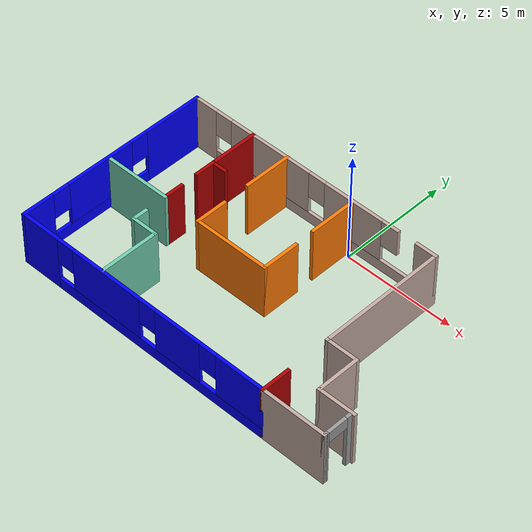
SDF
<?xml version='1.0'?>
<sdf version='1.6'>
  <model name='Building'>
    <pose frame=''>-0.778312 -4.05335 0 0 -0 0</pose>
    <link name='Wall_0'>
      <pose frame=''>-1.475 4.41632 0 0 -0 0</pose>
      <visual name='Wall_0_Visual_0'>
        <pose frame=''>-5.53947 0 1.25 0 -0 0</pose>
        <geometry>
          <box>
            <size>1.17105 0.15 2.5</size>
          </box>
        </geometry>
        <material>
          <script>
            <uri>file://media/materials/scripts/gazebo.material</uri>
            <name>Gazebo/Grey</name>
          </script>
          <ambient>0.760784 0.662745 0.627451 1</ambient>
        </material>
        <meta>
          <layer>0</layer>
        </meta>
      </visual>
      <collision name='Wall_0_Collision_0'>
        <geometry>
          <box>
            <size>1.17105 0.15 2.5</size>
          </box>
        </geometry>
        <pose frame=''>-5.53947 0 1.25 0 -0 0</pose>
      </collision>
      <visual name='Wall_0_Visual_1'>
        <pose frame=''>0.585527 0 0.25 0 -0 0</pose>
        <geometry>
          <box>
            <size>11.0789 0.15 0.5</size>
          </box>
        </geometry>
        <material>
          <script>
            <uri>file://media/materials/scripts/gazebo.material</uri>
            <name>Gazebo/Grey</name>
          </script>
          <ambient>0.760784 0.662745 0.627451 1</ambient>
        </material>
        <meta>
          <layer>0</layer>
        </meta>
      </visual>
      <collision name='Wall_0_Collision_1'>
        <geometry>
          <box>
            <size>11.0789 0.15 0.5</size>
          </box>
        </geometry>
        <pose frame=''>0.585527 0 0.25 0 -0 0</pose>
      </collision>
      <visual name='Wall_0_Visual_2'>
        <pose frame=''>-2.13333 0 1.5 0 -0 0</pose>
        <geometry>
          <box>
            <size>4.04124 0.15 2</size>
          </box>
        </geometry>
        <material>
          <script>
            <uri>file://media/materials/scripts/gazebo.material</uri>
            <name>Gazebo/Grey</name>
          </script>
          <ambient>0.760784 0.662745 0.627451 1</ambient>
        </material>
        <meta>
          <layer>0</layer>
        </meta>
      </visual>
      <collision name='Wall_0_Collision_2'>
        <geometry>
          <box>
            <size>4.04124 0.15 2</size>
          </box>
        </geometry>
        <pose frame=''>-2.13333 0 1.5 0 -0 0</pose>
      </collision>
      <visual name='Wall_0_Visual_3'>
        <pose frame=''>2.09715 0 1.5 0 -0 0</pose>
        <geometry>
          <box>
            <size>2.81973 0.15 2</size>
          </box>
        </geometry>
        <material>
          <script>
            <uri>file://media/materials/scripts/gazebo.material</uri>
            <name>Gazebo/Grey</name>
          </script>
          <ambient>0.760784 0.662745 0.627451 1</ambient>
        </material>
        <meta>
          <layer>0</layer>
        </meta>
      </visual>
      <collision name='Wall_0_Collision_3'>
        <geometry>
          <box>
            <size>2.81973 0.15 2</size>
          </box>
        </geometry>
        <pose frame=''>2.09715 0 1.5 0 -0 0</pose>
      </collision>
      <visual name='Wall_0_Visual_4'>
        <pose frame=''>5.61501 0 1.5 0 -0 0</pose>
        <geometry>
          <box>
            <size>1.01998 0.15 2</size>
          </box>
        </geometry>
        <material>
          <script>
            <uri>file://media/materials/scripts/gazebo.material</uri>
            <name>Gazebo/Grey</name>
          </script>
          <ambient>0.760784 0.662745 0.627451 1</ambient>
        </material>
        <meta>
          <layer>0</layer>
        </meta>
      </visual>
      <collision name='Wall_0_Collision_4'>
        <geometry>
          <box>
            <size>1.01998 0.15 2</size>
          </box>
        </geometry>
        <pose frame=''>5.61501 0 1.5 0 -0 0</pose>
      </collision>
      <visual name='Wall_0_Visual_5'>
        <pose frame=''>-4.55394 0 1.9 0 -0 0</pose>
        <geometry>
          <box>
            <size>0.8 0.15 1.2</size>
          </box>
        </geometry>
        <material>
          <script>
            <uri>file://media/materials/scripts/gazebo.material</uri>
            <name>Gazebo/Grey</name>
          </script>
          <ambient>0.760784 0.662745 0.627451 1</ambient>
        </material>
        <meta>
          <layer>0</layer>
        </meta>
      </visual>
      <collision name='Wall_0_Collision_5'>
        <geometry>
          <box>
            <size>0.8 0.15 1.2</size>
          </box>
        </geometry>
        <pose frame=''>-4.55394 0 1.9 0 -0 0</pose>
      </collision>
      <visual name='Wall_0_Visual_6'>
        <pose frame=''>0.287291 0 1.9 0 -0 0</pose>
        <geometry>
          <box>
            <size>0.8 0.15 1.2</size>
          </box>
        </geometry>
        <material>
          <script>
            <uri>file://media/materials/scripts/gazebo.material</uri>
            <name>Gazebo/Grey</name>
          </script>
          <ambient>0.760784 0.662745 0.627451 1</ambient>
        </material>
        <meta>
          <layer>0</layer>
        </meta>
      </visual>
      <collision name='Wall_0_Collision_6'>
        <geometry>
          <box>
            <size>0.8 0.15 1.2</size>
          </box>
        </geometry>
        <pose frame=''>0.287291 0 1.9 0 -0 0</pose>
      </collision>
      <visual name='Wall_0_Visual_7'>
        <pose frame=''>3.90602 0 1.9 0 -0 0</pose>
        <geometry>
          <box>
            <size>0.798006 0.15 1.2</size>
          </box>
        </geometry>
        <material>
          <script>
            <uri>file://media/materials/scripts/gazebo.material</uri>
            <name>Gazebo/Grey</name>
          </script>
          <ambient>0.760784 0.662745 0.627451 1</ambient>
        </material>
        <meta>
          <layer>0</layer>
        </meta>
      </visual>
      <collision name='Wall_0_Collision_7'>
        <geometry>
          <box>
            <size>0.798006 0.15 1.2</size>
          </box>
        </geometry>
        <pose frame=''>3.90602 0 1.9 0 -0 0</pose>
      </collision>
    </link>
    <link name='Wall_11'>
      <collision name='Wall_11_Collision'>
        <geometry>
          <box>
            <size>2 0.15 2.5</size>
          </box>
        </geometry>
        <pose frame=''>0 0 1.25 0 -0 0</pose>
      </collision>
      <visual name='Wall_11_Visual'>
        <pose frame=''>0 0 1.25 0 -0 0</pose>
        <geometry>
          <box>
            <size>2 0.15 2.5</size>
          </box>
        </geometry>
        <material>
          <script>
            <uri>file://media/materials/scripts/gazebo.material</uri>
            <name>Gazebo/Grey</name>
          </script>
          <ambient>0.760784 0.662745 0.627451 1</ambient>
        </material>
        <meta>
          <layer>0</layer>
        </meta>
      </visual>
      <pose frame=''>5.925 -2.15868 0 0 -0 1.5708</pose>
    </link>
    <link name='Wall_12'>
      <collision name='Wall_12_Collision'>
        <geometry>
          <box>
            <size>1.5 0.15 2.5</size>
          </box>
        </geometry>
        <pose frame=''>0 0 1.25 0 -0 0</pose>
      </collision>
      <visual name='Wall_12_Visual'>
        <pose frame=''>0 0 1.25 0 -0 0</pose>
        <geometry>
          <box>
            <size>1.5 0.15 2.5</size>
          </box>
        </geometry>
        <material>
          <script>
            <uri>file://media/materials/scripts/gazebo.material</uri>
            <name>Gazebo/Grey</name>
          </script>
          <ambient>0.760784 0.662745 0.627451 1</ambient>
        </material>
        <meta>
          <layer>0</layer>
        </meta>
      </visual>
      <pose frame=''>5.25 -1.23368 0 0 -0 3.14159</pose>
    </link>
    <link name='Wall_14'>
      <collision name='Wall_14_Collision'>
        <geometry>
          <box>
            <size>1.367 0.15 2.5</size>
          </box>
        </geometry>
        <pose frame=''>0 0 1.25 0 -0 0</pose>
      </collision>
      <visual name='Wall_14_Visual'>
        <pose frame=''>0 0 1.25 0 -0 0</pose>
        <geometry>
          <box>
            <size>1.367 0.15 2.5</size>
          </box>
        </geometry>
        <material>
          <script>
            <uri>file://media/materials/scripts/gazebo.material</uri>
            <name>Gazebo/Grey</name>
          </script>
          <ambient>0.666667 0 0 1</ambient>
        </material>
        <meta>
          <layer>0</layer>
        </meta>
      </visual>
      <pose frame=''>4.575 -3.82518 0 0 0 -1.5708</pose>
    </link>
    <link name='Wall_16'>
      <collision name='Wall_16_Collision'>
        <geometry>
          <box>
            <size>5.8 0.15 2.5</size>
          </box>
        </geometry>
        <pose frame=''>0 0 1.25 0 -0 0</pose>
      </collision>
      <visual name='Wall_16_Visual'>
        <pose frame=''>0 0 1.25 0 -0 0</pose>
        <geometry>
          <box>
            <size>5.8 0.15 2.5</size>
          </box>
        </geometry>
        <material>
          <script>
            <uri>file://media/materials/scripts/gazebo.material</uri>
            <name>Gazebo/Grey</name>
          </script>
          <ambient>0.760784 0.662745 0.627451 1</ambient>
        </material>
        <meta>
          <layer>0</layer>
        </meta>
      </visual>
      <pose frame=''>4.575 1.59132 0 0 -0 1.5708</pose>
    </link>
    <link name='Wall_18'>
      <collision name='Wall_18_Collision'>
        <geometry>
          <box>
            <size>1.75 0.15 2.5</size>
          </box>
        </geometry>
        <pose frame=''>0 0 1.25 0 -0 0</pose>
      </collision>
      <visual name='Wall_18_Visual'>
        <pose frame=''>0 0 1.25 0 -0 0</pose>
        <geometry>
          <box>
            <size>1.75 0.15 2.5</size>
          </box>
        </geometry>
        <material>
          <script>
            <uri>file://media/materials/scripts/gazebo.material</uri>
            <name>Gazebo/Grey</name>
          </script>
          <ambient>0.760784 0.662745 0.627451 1</ambient>
        </material>
        <meta>
          <layer>0</layer>
        </meta>
      </visual>
      <pose frame=''>6.725 -3.08368 0 0 -0 0</pose>
    </link>
    <link name='Wall_20'>
      <collision name='Wall_20_Collision'>
        <geometry>
          <box>
            <size>2.25 0.15 2.5</size>
          </box>
        </geometry>
        <pose frame=''>0 0 1.25 0 -0 0</pose>
      </collision>
      <visual name='Wall_20_Visual'>
        <pose frame=''>0 0 1.25 0 -0 0</pose>
        <geometry>
          <box>
            <size>2.25 0.15 2.5</size>
          </box>
        </geometry>
        <material>
          <script>
            <uri>file://media/materials/scripts/gazebo.material</uri>
            <name>Gazebo/Grey</name>
          </script>
          <ambient>0.996078 0.47451 0.0196078 1</ambient>
        </material>
        <meta>
          <layer>0</layer>
        </meta>
      </visual>
      <pose frame=''>0.581262 3.33742 0 0 0 -1.5708</pose>
    </link>
    <link name='Wall_22'>
      <collision name='Wall_22_Collision'>
        <geometry>
          <box>
            <size>1.75 0.15 2.5</size>
          </box>
        </geometry>
        <pose frame=''>0 0 1.25 0 -0 0</pose>
      </collision>
      <visual name='Wall_22_Visual'>
        <pose frame=''>0 0 1.25 0 -0 0</pose>
        <geometry>
          <box>
            <size>1.75 0.15 2.5</size>
          </box>
        </geometry>
        <material>
          <script>
            <uri>file://media/materials/scripts/gazebo.material</uri>
            <name>Gazebo/Grey</name>
          </script>
          <ambient>0.996078 0.47451 0.0196078 1</ambient>
        </material>
        <meta>
          <layer>0</layer>
        </meta>
      </visual>
      <pose frame=''>0.604393 0.534183 0 0 0 -1.5708</pose>
    </link>
    <link name='Wall_23'>
      <collision name='Wall_23_Collision'>
        <geometry>
          <box>
            <size>3.5 0.15 2.5</size>
          </box>
        </geometry>
        <pose frame=''>0 0 1.25 0 -0 0</pose>
      </collision>
      <visual name='Wall_23_Visual'>
        <pose frame=''>0 0 1.25 0 -0 0</pose>
        <geometry>
          <box>
            <size>3.5 0.15 2.5</size>
          </box>
        </geometry>
        <material>
          <script>
            <uri>file://media/materials/scripts/gazebo.material</uri>
            <name>Gazebo/Grey</name>
          </script>
          <ambient>0.996078 0.47451 0.0196078 1</ambient>
        </material>
        <meta>
          <layer>0</layer>
        </meta>
      </visual>
      <pose frame=''>-1.07061 -0.265817 0 0 -0 3.14159</pose>
    </link>
    <link name='Wall_24'>
      <collision name='Wall_24_Collision'>
        <geometry>
          <box>
            <size>1.5 0.15 2.5</size>
          </box>
        </geometry>
        <pose frame=''>0 0 1.25 0 -0 0</pose>
      </collision>
      <visual name='Wall_24_Visual'>
        <pose frame=''>0 0 1.25 0 -0 0</pose>
        <geometry>
          <box>
            <size>1.5 0.15 2.5</size>
          </box>
        </geometry>
        <material>
          <script>
            <uri>file://media/materials/scripts/gazebo.material</uri>
            <name>Gazebo/Grey</name>
          </script>
          <ambient>0.996078 0.47451 0.0196078 1</ambient>
        </material>
        <meta>
          <layer>0</layer>
        </meta>
      </visual>
      <pose frame=''>-2.74561 0.409183 0 0 -0 1.5708</pose>
    </link>
    <link name='Wall_27'>
      <collision name='Wall_27_Collision'>
        <geometry>
          <box>
            <size>2.25 0.15 2.5</size>
          </box>
        </geometry>
        <pose frame=''>0 0 1.25 0 -0 0</pose>
      </collision>
      <visual name='Wall_27_Visual'>
        <pose frame=''>0 0 1.25 0 -0 0</pose>
        <geometry>
          <box>
            <size>2.25 0.15 2.5</size>
          </box>
        </geometry>
        <material>
          <script>
            <uri>file://media/materials/scripts/gazebo.material</uri>
            <name>Gazebo/Grey</name>
          </script>
          <ambient>0.996078 0.47451 0.0196078 1</ambient>
        </material>
        <meta>
          <layer>0</layer>
        </meta>
      </visual>
      <pose frame=''>-2.77268 3.38368 0 0 0 -1.5708</pose>
    </link>
    <link name='Wall_29'>
      <collision name='Wall_29_Collision'>
        <geometry>
          <box>
            <size>2.25 0.15 2.5</size>
          </box>
        </geometry>
        <pose frame=''>0 0 1.25 0 -0 0</pose>
      </collision>
      <visual name='Wall_29_Visual'>
        <pose frame=''>0 0 1.25 0 -0 0</pose>
        <geometry>
          <box>
            <size>2.25 0.15 2.5</size>
          </box>
        </geometry>
        <material>
          <script>
            <uri>file://media/materials/scripts/gazebo.material</uri>
            <name>Gazebo/Grey</name>
          </script>
          <ambient>0.666667 0 0 1</ambient>
        </material>
        <meta>
          <layer>0</layer>
        </meta>
      </visual>
      <pose frame=''>-4.5306 3.33742 0 0 0 -1.5708</pose>
    </link>
    <link name='Wall_30'>
      <collision name='Wall_30_Collision'>
        <geometry>
          <box>
            <size>0.75 0.15 2.5</size>
          </box>
        </geometry>
        <pose frame=''>0 0 1.25 0 -0 0</pose>
      </collision>
      <visual name='Wall_30_Visual'>
        <pose frame=''>0 0 1.25 0 -0 0</pose>
        <geometry>
          <box>
            <size>0.75 0.15 2.5</size>
          </box>
        </geometry>
        <material>
          <script>
            <uri>file://media/materials/scripts/gazebo.material</uri>
            <name>Gazebo/Grey</name>
          </script>
          <ambient>0.666667 0 0 1</ambient>
        </material>
        <meta>
          <layer>0</layer>
        </meta>
      </visual>
      <pose frame=''>-4.2306 2.28742 0 0 -0 0</pose>
    </link>
    <link name='Wall_32'>
      <collision name='Wall_32_Collision'>
        <geometry>
          <box>
            <size>1 0.15 2.5</size>
          </box>
        </geometry>
        <pose frame=''>0 0 1.25 0 -0 0</pose>
      </collision>
      <visual name='Wall_32_Visual'>
        <pose frame=''>0 0 1.25 0 -0 0</pose>
        <geometry>
          <box>
            <size>1 0.15 2.5</size>
          </box>
        </geometry>
        <material>
          <script>
            <uri>file://media/materials/scripts/gazebo.material</uri>
            <name>Gazebo/Grey</name>
          </script>
          <ambient>0.666667 0 0 1</ambient>
        </material>
        <meta>
          <layer>0</layer>
        </meta>
      </visual>
      <pose frame=''>-4.5306 1.86242 0 0 0 -1.5708</pose>
    </link>
    <link name='Wall_37'>
      <collision name='Wall_37_Collision'>
        <geometry>
          <box>
            <size>1 0.15 2.5</size>
          </box>
        </geometry>
        <pose frame=''>0 0 1.25 0 -0 0</pose>
      </collision>
      <visual name='Wall_37_Visual'>
        <pose frame=''>0 0 1.25 0 -0 0</pose>
        <geometry>
          <box>
            <size>1 0.15 2.5</size>
          </box>
        </geometry>
        <material>
          <script>
            <uri>file://media/materials/scripts/gazebo.material</uri>
            <name>Gazebo/Grey</name>
          </script>
          <ambient>0.666667 0 0 1</ambient>
        </material>
        <meta>
          <layer>0</layer>
        </meta>
      </visual>
      <pose frame=''>-4.50747 0.192134 0 0 0 -1.5708</pose>
    </link>
    <link name='Wall_38'>
      <collision name='Wall_38_Collision'>
        <geometry>
          <box>
            <size>3 0.15 2.5</size>
          </box>
        </geometry>
        <pose frame=''>0 0 1.25 0 -0 0</pose>
      </collision>
      <visual name='Wall_38_Visual'>
        <pose frame=''>0 0 1.25 0 -0 0</pose>
        <geometry>
          <box>
            <size>3 0.15 2.5</size>
          </box>
        </geometry>
        <material>
          <script>
            <uri>file://media/materials/scripts/gazebo.material</uri>
            <name>Gazebo/Grey</name>
          </script>
          <ambient>0.435294 0.796078 0.67451 1</ambient>
        </material>
        <meta>
          <layer>0</layer>
        </meta>
      </visual>
      <pose frame=''>-5.93247 -0.232866 0 0 -0 3.14159</pose>
    </link>
    <link name='Wall_40'>
      <collision name='Wall_40_Collision'>
        <geometry>
          <box>
            <size>2.75 0.15 2.5</size>
          </box>
        </geometry>
        <pose frame=''>0 0 1.25 0 -0 0</pose>
      </collision>
      <visual name='Wall_40_Visual'>
        <pose frame=''>0 0 1.25 0 -0 0</pose>
        <geometry>
          <box>
            <size>2.75 0.15 2.5</size>
          </box>
        </geometry>
        <material>
          <script>
            <uri>file://media/materials/scripts/gazebo.material</uri>
            <name>Gazebo/Grey</name>
          </script>
          <ambient>0.435294 0.796078 0.67451 1</ambient>
        </material>
        <meta>
          <layer>0</layer>
        </meta>
      </visual>
      <pose frame=''>-3.3972 -3.11158 0 0 0 -1.5708</pose>
    </link>
    <link name='Wall_42'>
      <collision name='Wall_42_Collision'>
        <geometry>
          <box>
            <size>1.25 0.15 2.5</size>
          </box>
        </geometry>
        <pose frame=''>0 0 1.25 0 -0 0</pose>
      </collision>
      <visual name='Wall_42_Visual'>
        <pose frame=''>0 0 1.25 0 -0 0</pose>
        <geometry>
          <box>
            <size>1.25 0.15 2.5</size>
          </box>
        </geometry>
        <material>
          <script>
            <uri>file://media/materials/scripts/gazebo.material</uri>
            <name>Gazebo/Grey</name>
          </script>
          <ambient>0.435294 0.796078 0.67451 1</ambient>
        </material>
        <meta>
          <layer>0</layer>
        </meta>
      </visual>
      <pose frame=''>-3.9472 -1.81158 0 0 -0 3.14159</pose>
    </link>
    <link name='Wall_43'>
      <collision name='Wall_43_Collision'>
        <geometry>
          <box>
            <size>0.75 0.15 2.5</size>
          </box>
        </geometry>
        <pose frame=''>0 0 1.25 0 -0 0</pose>
      </collision>
      <visual name='Wall_43_Visual'>
        <pose frame=''>0 0 1.25 0 -0 0</pose>
        <geometry>
          <box>
            <size>0.75 0.15 2.5</size>
          </box>
        </geometry>
        <material>
          <script>
            <uri>file://media/materials/scripts/gazebo.material</uri>
            <name>Gazebo/Grey</name>
          </script>
          <ambient>0.435294 0.796078 0.67451 1</ambient>
        </material>
        <meta>
          <layer>0</layer>
        </meta>
      </visual>
      <pose frame=''>-4.4972 -1.51158 0 0 -0 1.5708</pose>
    </link>
    <link name='Wall_5'>
      <pose frame=''>-7.525 -0.008684 0 0 0 -1.5708</pose>
      <visual name='Wall_5_Visual_0'>
        <pose frame=''>-3.10555 0 1.25 0 -0 0</pose>
        <geometry>
          <box>
            <size>2.78891 0.15 2.5</size>
          </box>
        </geometry>
        <material>
          <script>
            <uri>file://media/materials/scripts/gazebo.material</uri>
            <name>Gazebo/Grey</name>
          </script>
          <ambient>0 0 1 1</ambient>
        </material>
        <meta>
          <layer>0</layer>
        </meta>
      </visual>
      <collision name='Wall_5_Collision_0'>
        <geometry>
          <box>
            <size>2.78891 0.15 2.5</size>
          </box>
        </geometry>
        <pose frame=''>-3.10555 0 1.25 0 -0 0</pose>
      </collision>
      <visual name='Wall_5_Visual_1'>
        <pose frame=''>1.39445 0 0.25 0 -0 0</pose>
        <geometry>
          <box>
            <size>6.2111 0.15 0.5</size>
          </box>
        </geometry>
        <material>
          <script>
            <uri>file://media/materials/scripts/gazebo.material</uri>
            <name>Gazebo/Grey</name>
          </script>
          <ambient>0 0 1 1</ambient>
        </material>
        <meta>
          <layer>0</layer>
        </meta>
      </visual>
      <collision name='Wall_5_Collision_1'>
        <geometry>
          <box>
            <size>6.2111 0.15 0.5</size>
          </box>
        </geometry>
        <pose frame=''>1.39445 0 0.25 0 -0 0</pose>
      </collision>
      <visual name='Wall_5_Visual_2'>
        <pose frame=''>0.67062 0 1.5 0 -0 0</pose>
        <geometry>
          <box>
            <size>3.16343 0.15 2</size>
          </box>
        </geometry>
        <material>
          <script>
            <uri>file://media/materials/scripts/gazebo.material</uri>
            <name>Gazebo/Grey</name>
          </script>
          <ambient>0 0 1 1</ambient>
        </material>
        <meta>
          <layer>0</layer>
        </meta>
      </visual>
      <collision name='Wall_5_Collision_2'>
        <geometry>
          <box>
            <size>3.16343 0.15 2</size>
          </box>
        </geometry>
        <pose frame=''>0.67062 0 1.5 0 -0 0</pose>
      </collision>
      <visual name='Wall_5_Visual_3'>
        <pose frame=''>3.77617 0 1.5 0 -0 0</pose>
        <geometry>
          <box>
            <size>1.44766 0.15 2</size>
          </box>
        </geometry>
        <material>
          <script>
            <uri>file://media/materials/scripts/gazebo.material</uri>
            <name>Gazebo/Grey</name>
          </script>
          <ambient>0 0 1 1</ambient>
        </material>
        <meta>
          <layer>0</layer>
        </meta>
      </visual>
      <collision name='Wall_5_Collision_3'>
        <geometry>
          <box>
            <size>1.44766 0.15 2</size>
          </box>
        </geometry>
        <pose frame=''>3.77617 0 1.5 0 -0 0</pose>
      </collision>
      <visual name='Wall_5_Visual_4'>
        <pose frame=''>-1.31109 0 1.9 0 -0 0</pose>
        <geometry>
          <box>
            <size>0.8 0.15 1.2</size>
          </box>
        </geometry>
        <material>
          <script>
            <uri>file://media/materials/scripts/gazebo.material</uri>
            <name>Gazebo/Grey</name>
          </script>
          <ambient>0 0 1 1</ambient>
        </material>
        <meta>
          <layer>0</layer>
        </meta>
      </visual>
      <collision name='Wall_5_Collision_4'>
        <geometry>
          <box>
            <size>0.8 0.15 1.2</size>
          </box>
        </geometry>
        <pose frame=''>-1.31109 0 1.9 0 -0 0</pose>
      </collision>
      <visual name='Wall_5_Visual_5'>
        <pose frame=''>2.65233 0 1.9 0 -0 0</pose>
        <geometry>
          <box>
            <size>0.8 0.15 1.2</size>
          </box>
        </geometry>
        <material>
          <script>
            <uri>file://media/materials/scripts/gazebo.material</uri>
            <name>Gazebo/Grey</name>
          </script>
          <ambient>0 0 1 1</ambient>
        </material>
        <meta>
          <layer>0</layer>
        </meta>
      </visual>
      <collision name='Wall_5_Collision_5'>
        <geometry>
          <box>
            <size>0.8 0.15 1.2</size>
          </box>
        </geometry>
        <pose frame=''>2.65233 0 1.9 0 -0 0</pose>
      </collision>
    </link>
    <link name='Wall_6'>
      <pose frame=''>-1.475 -4.43368 0 0 -0 0</pose>
      <visual name='Wall_6_Visual_0'>
        <pose frame=''>-5.16707 0 1.25 0 -0 0</pose>
        <geometry>
          <box>
            <size>1.91586 0.15 2.5</size>
          </box>
        </geometry>
        <material>
          <script>
            <uri>file://media/materials/scripts/gazebo.material</uri>
            <name>Gazebo/Grey</name>
          </script>
          <ambient>0 0 1 1</ambient>
        </material>
        <meta>
          <layer>0</layer>
        </meta>
      </visual>
      <collision name='Wall_6_Collision_0'>
        <geometry>
          <box>
            <size>1.91586 0.15 2.5</size>
          </box>
        </geometry>
        <pose frame=''>-5.16707 0 1.25 0 -0 0</pose>
      </collision>
      <visual name='Wall_6_Visual_1'>
        <pose frame=''>0.95793 0 0.25 0 -0 0</pose>
        <geometry>
          <box>
            <size>10.3341 0.15 0.5</size>
          </box>
        </geometry>
        <material>
          <script>
            <uri>file://media/materials/scripts/gazebo.material</uri>
            <name>Gazebo/Grey</name>
          </script>
          <ambient>0 0 1 1</ambient>
        </material>
        <meta>
          <layer>0</layer>
        </meta>
      </visual>
      <collision name='Wall_6_Collision_1'>
        <geometry>
          <box>
            <size>10.3341 0.15 0.5</size>
          </box>
        </geometry>
        <pose frame=''>0.95793 0 0.25 0 -0 0</pose>
      </collision>
      <visual name='Wall_6_Visual_2'>
        <pose frame=''>-1.69442 0 1.5 0 -0 0</pose>
        <geometry>
          <box>
            <size>3.42943 0.15 2</size>
          </box>
        </geometry>
        <material>
          <script>
            <uri>file://media/materials/scripts/gazebo.material</uri>
            <name>Gazebo/Grey</name>
          </script>
          <ambient>0 0 1 1</ambient>
        </material>
        <meta>
          <layer>0</layer>
        </meta>
      </visual>
      <collision name='Wall_6_Collision_2'>
        <geometry>
          <box>
            <size>3.42943 0.15 2</size>
          </box>
        </geometry>
        <pose frame=''>-1.69442 0 1.5 0 -0 0</pose>
      </collision>
      <visual name='Wall_6_Visual_3'>
        <pose frame=''>1.9232 0 1.5 0 -0 0</pose>
        <geometry>
          <box>
            <size>2.20582 0.15 2</size>
          </box>
        </geometry>
        <material>
          <script>
            <uri>file://media/materials/scripts/gazebo.material</uri>
            <name>Gazebo/Grey</name>
          </script>
          <ambient>0 0 1 1</ambient>
        </material>
        <meta>
          <layer>0</layer>
        </meta>
      </visual>
      <collision name='Wall_6_Collision_3'>
        <geometry>
          <box>
            <size>2.20582 0.15 2</size>
          </box>
        </geometry>
        <pose frame=''>1.9232 0 1.5 0 -0 0</pose>
      </collision>
      <visual name='Wall_6_Visual_4'>
        <pose frame=''>4.97556 0 1.5 0 -0 0</pose>
        <geometry>
          <box>
            <size>2.29889 0.15 2</size>
          </box>
        </geometry>
        <material>
          <script>
            <uri>file://media/materials/scripts/gazebo.material</uri>
            <name>Gazebo/Grey</name>
          </script>
          <ambient>0 0 1 1</ambient>
        </material>
        <meta>
          <layer>0</layer>
        </meta>
      </visual>
      <collision name='Wall_6_Collision_4'>
        <geometry>
          <box>
            <size>2.29889 0.15 2</size>
          </box>
        </geometry>
        <pose frame=''>4.97556 0 1.5 0 -0 0</pose>
      </collision>
      <visual name='Wall_6_Visual_5'>
        <pose frame=''>-3.80914 0 1.9 0 -0 0</pose>
        <geometry>
          <box>
            <size>0.8 0.15 1.2</size>
          </box>
        </geometry>
        <material>
          <script>
            <uri>file://media/materials/scripts/gazebo.material</uri>
            <name>Gazebo/Grey</name>
          </script>
          <ambient>0 0 1 1</ambient>
        </material>
        <meta>
          <layer>0</layer>
        </meta>
      </visual>
      <collision name='Wall_6_Collision_5'>
        <geometry>
          <box>
            <size>0.8 0.15 1.2</size>
          </box>
        </geometry>
        <pose frame=''>-3.80914 0 1.9 0 -0 0</pose>
      </collision>
      <visual name='Wall_6_Visual_6'>
        <pose frame=''>0.420292 0 1.9 0 -0 0</pose>
        <geometry>
          <box>
            <size>0.8 0.15 1.2</size>
          </box>
        </geometry>
        <material>
          <script>
            <uri>file://media/materials/scripts/gazebo.material</uri>
            <name>Gazebo/Grey</name>
          </script>
          <ambient>0 0 1 1</ambient>
        </material>
        <meta>
          <layer>0</layer>
        </meta>
      </visual>
      <collision name='Wall_6_Collision_6'>
        <geometry>
          <box>
            <size>0.8 0.15 1.2</size>
          </box>
        </geometry>
        <pose frame=''>0.420292 0 1.9 0 -0 0</pose>
      </collision>
      <visual name='Wall_6_Visual_7'>
        <pose frame=''>3.42611 0 1.9 0 -0 0</pose>
        <geometry>
          <box>
            <size>0.8 0.15 1.2</size>
          </box>
        </geometry>
        <material>
          <script>
            <uri>file://media/materials/scripts/gazebo.material</uri>
            <name>Gazebo/Grey</name>
          </script>
          <ambient>0 0 1 1</ambient>
        </material>
        <meta>
          <layer>0</layer>
        </meta>
      </visual>
      <collision name='Wall_6_Collision_7'>
        <geometry>
          <box>
            <size>0.8 0.15 1.2</size>
          </box>
        </geometry>
        <pose frame=''>3.42611 0 1.9 0 -0 0</pose>
      </collision>
    </link>
    <link name='Wall_7'>
      <collision name='Wall_7_Collision'>
        <geometry>
          <box>
            <size>3 0.15 2.5</size>
          </box>
        </geometry>
        <pose frame=''>0 0 1.25 0 -0 0</pose>
      </collision>
      <visual name='Wall_7_Visual'>
        <pose frame=''>0 0 1.25 0 -0 0</pose>
        <geometry>
          <box>
            <size>3 0.15 2.5</size>
          </box>
        </geometry>
        <material>
          <script>
            <uri>file://media/materials/scripts/gazebo.material</uri>
            <name>Gazebo/Grey</name>
          </script>
          <ambient>0.760784 0.662745 0.627451 1</ambient>
        </material>
        <meta>
          <layer>0</layer>
        </meta>
      </visual>
      <pose frame=''>6 -4.43368 0 0 -0 0</pose>
    </link>
    <link name='Wall_8'>
      <pose frame=''>7.425 -3.82518 0 0 -0 1.5708</pose>
      <visual name='Wall_8_Visual_0'>
        <pose frame=''>-0.569871 0 1.25 0 -0 0</pose>
        <geometry>
          <box>
            <size>0.227257 0.15 2.5</size>
          </box>
        </geometry>
        <material>
          <script>
            <uri>file://media/materials/scripts/gazebo.material</uri>
            <name>Gazebo/Grey</name>
          </script>
          <ambient>1 1 1 1</ambient>
        </material>
        <meta>
          <layer>0</layer>
        </meta>
      </visual>
      <collision name='Wall_8_Collision_0'>
        <geometry>
          <box>
            <size>0.227257 0.15 2.5</size>
          </box>
        </geometry>
        <pose frame=''>-0.569871 0 1.25 0 -0 0</pose>
      </collision>
      <visual name='Wall_8_Visual_1'>
        <pose frame=''>0.563628 0 1.25 0 -0 0</pose>
        <geometry>
          <box>
            <size>0.239742 0.15 2.5</size>
          </box>
        </geometry>
        <material>
          <script>
            <uri>file://media/materials/scripts/gazebo.material</uri>
            <name>Gazebo/Grey</name>
          </script>
          <ambient>1 1 1 1</ambient>
        </material>
        <meta>
          <layer>0</layer>
        </meta>
      </visual>
      <collision name='Wall_8_Collision_1'>
        <geometry>
          <box>
            <size>0.239742 0.15 2.5</size>
          </box>
        </geometry>
        <pose frame=''>0.563628 0 1.25 0 -0 0</pose>
      </collision>
      <visual name='Wall_8_Visual_2'>
        <pose frame=''>-0.006243 0 2.25 0 -0 0</pose>
        <geometry>
          <box>
            <size>0.9 0.15 0.5</size>
          </box>
        </geometry>
        <material>
          <script>
            <uri>file://media/materials/scripts/gazebo.material</uri>
            <name>Gazebo/Grey</name>
          </script>
          <ambient>1 1 1 1</ambient>
        </material>
        <meta>
          <layer>0</layer>
        </meta>
      </visual>
      <collision name='Wall_8_Collision_2'>
        <geometry>
          <box>
            <size>0.9 0.15 0.5</size>
          </box>
        </geometry>
        <pose frame=''>-0.006243 0 2.25 0 -0 0</pose>
      </collision>
    </link>
    <static>1</static>
  </model>
</sdf>
